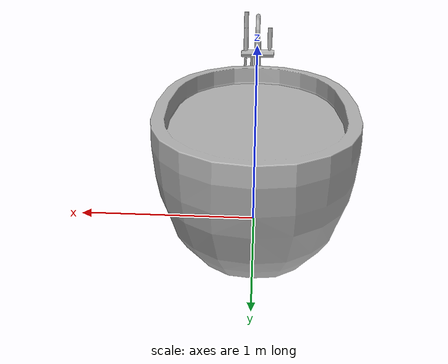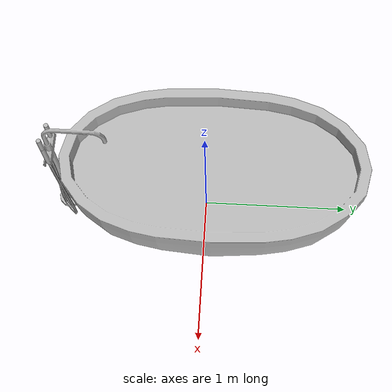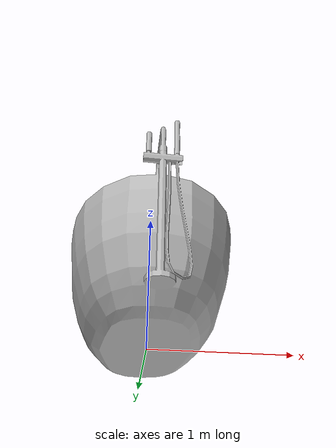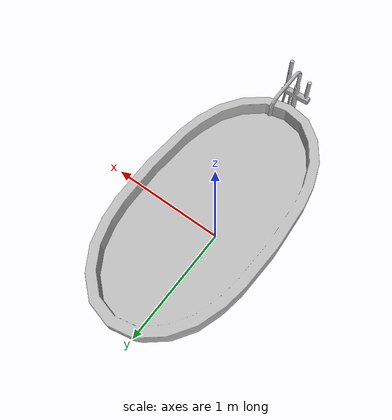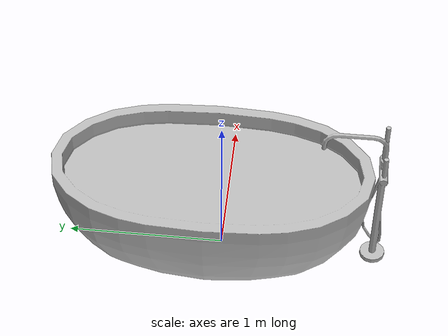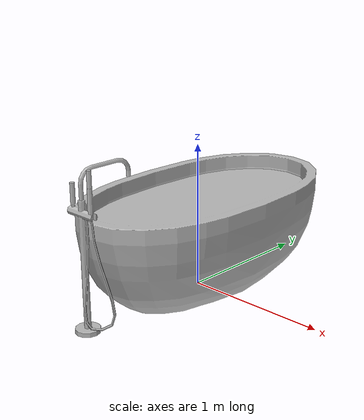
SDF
<?xml version='1.0'?>
<sdf version='1.4'>
  <model name='s__1939'>
    <pose>0 0 0 0 0 0</pose>
    <static>true</static>
    <link name='link'>
      <collision name='collision'>
        <pose>0 0 0 0 0 0</pose>
        <geometry>
          <box>
            <size>1.07968 2.12 2</size>
          </box>
        </geometry>
      </collision>
      <visual name='visual'>
        <pose>0 0 0 0 0 0</pose>
        <geometry>
          <mesh><uri>model://s__1939/s__1939.dae</uri></mesh>
        </geometry>
      </visual>
    </link>
  </model>
</sdf>
